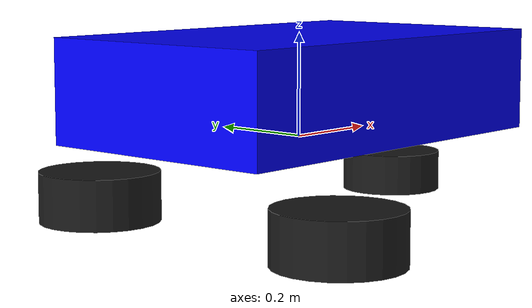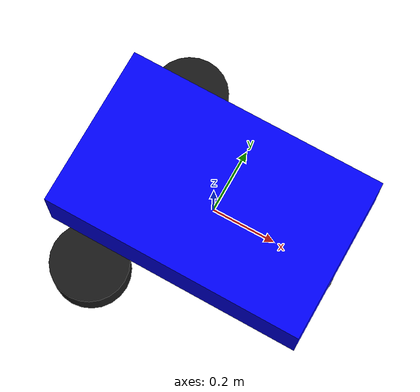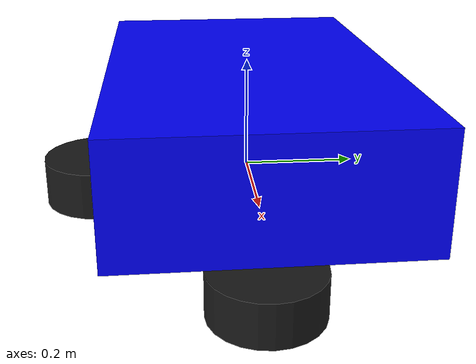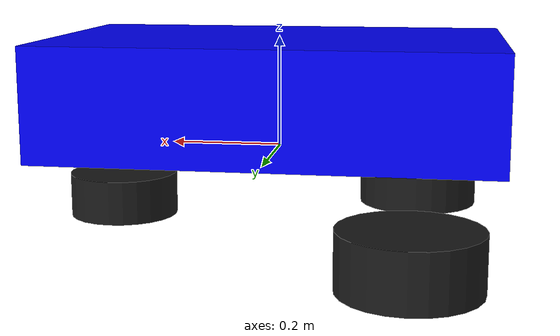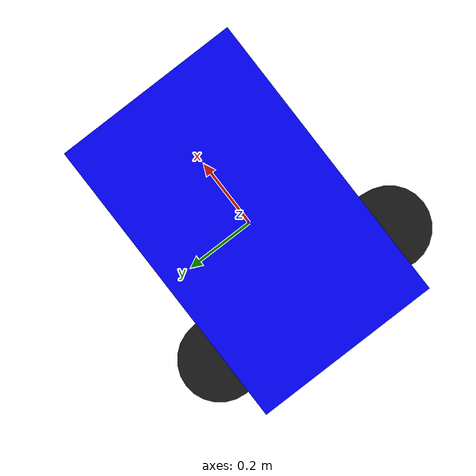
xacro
<?xml version="1.0"?>
<robot name="tricycle_robot" xmlns:xacro="http://www.ros.org/wiki/xacro">
    <!-- 车身（方块） -->
    <link name="base_link">
        <visual>
            <geometry>
                <box size="0.8 0.5 0.2"/>
            </geometry>
            <origin xyz="0 0 0.1"/>
            <material name="blue">
                <color rgba="0 0 1 1"/>
            </material>
        </visual>
        <collision>
            <geometry>
                <box size="0.8 0.5 0.2"/>
            </geometry>
            <origin xyz="0 0 0.1"/>
        </collision>
        <inertial>
            <mass value="1.0"/>
            <inertia ixx="0.1" ixy="0" ixz="0" iyy="0.1" iyz="0" izz="0.1"/>
        </inertial>
    </link>

    <!-- 左后轮 -->
    <link name="left_wheel_link">
        <visual>
            <geometry>
                <cylinder length="0.1" radius="0.12"/>
            </geometry>
            <origin xyz="0 0 0" rpy="0 1.5708 0"/>
            <material name="black">
                <color rgba="0.1 0.1 0.1 1"/>
            </material>
        </visual>
        <collision>
            <geometry>
                <cylinder length="0.1" radius="0.12"/>
            </geometry>
            <origin xyz="0 0 0" rpy="0 1.5708 0"/>
        </collision>
        <inertial>
            <mass value="0.1"/>
            <inertia ixx="0.001" ixy="0" ixz="0" iyy="0.001" iyz="0" izz="0.001"/>
        </inertial>
    </link>

    <!-- 右后轮 -->
    <link name="right_wheel_link">
        <visual>
            <geometry>
                <cylinder length="0.1" radius="0.12"/>
            </geometry>
            <origin xyz="0 0 0" rpy="0 1.5708 0"/>
            <material name="black">
                <color rgba="0.1 0.1 0.1 1"/>
            </material>
        </visual>
        <collision>
            <geometry>
                <cylinder length="0.1" radius="0.12"/>
            </geometry>
            <origin xyz="0 0 0" rpy="0 1.5708 0"/>
        </collision>
        <inertial>
            <mass value="0.1"/>
            <inertia ixx="0.001" ixy="0" ixz="0" iyy="0.001" iyz="0" izz="0.001"/>
        </inertial>
    </link>

    <!-- 前轮 -->
    <link name="front_wheel_link">
        <visual>
            <geometry>
                <cylinder length="0.08" radius="0.1"/>
            </geometry>
            <origin xyz="0 0 0" rpy="0 1.5708 0"/>
            <material name="black">
                <color rgba="0.1 0.1 0.1 1"/>
            </material>
        </visual>
        <collision>
            <geometry>
                <cylinder length="0.08" radius="0.1"/>
            </geometry>
            <origin xyz="0 0 0" rpy="0 1.5708 0"/>
        </collision>
        <inertial>
            <mass value="0.1"/>
            <inertia ixx="0.001" ixy="0" ixz="0" iyy="0.001" iyz="0" izz="0.001"/>
        </inertial>
    </link>

    <!-- 左后轮关节 -->
    <joint name="left_wheel_joint" type="continuous">
        <parent link="base_link"/>
        <child link="left_wheel_link"/>
        <origin xyz="-0.25 -0.3 -0.12" rpy="0 1.5708 0"/>
        <axis xyz="0 1 0"/>
    </joint>

    <!-- 右后轮关节 -->
    <joint name="right_wheel_joint" type="continuous">
        <parent link="base_link"/>
        <child link="right_wheel_link"/>
        <origin xyz="-0.25 0.3 -0.12" rpy="0 1.5708 0"/>
        <axis xyz="0 1 0"/>
    </joint>

    <!-- 前轮关节 -->
    <joint name="front_wheel_joint" type="continuous">
        <parent link="base_link"/>
        <child link="front_wheel_link"/>
        <origin xyz="0.3 0 -0.1" rpy="0 1.5708 0"/>
        <axis xyz="0 1 0"/>
    </joint>

</robot>
